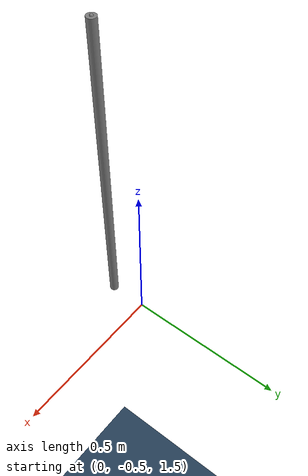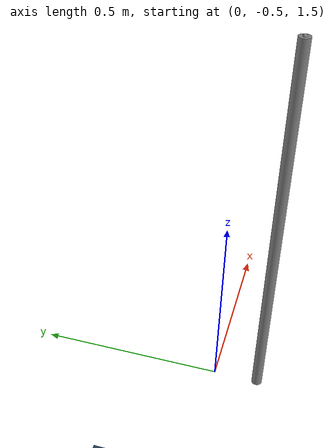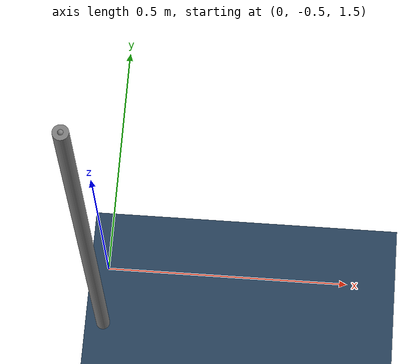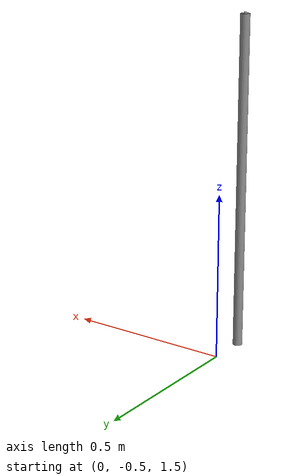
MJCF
<?xml version='1.0' encoding='utf-8'?>
<mujoco model="TT_six_bars">
  <compiler angle="degree" coordinate="local" inertiafromgeom="true" />
  <option timestep="0.0001" integrator="RK4" gravity="0 0 -10">
    <flag contact="enable" energy="enable" />
  </option>
  <default>
    <geom conaffinity="1" condim="1" contype="1" margin="0.001" />
    <site type="sphere" size="0.005" />
    <tendon limited="true" range="0 10" width="0.001" rgba="1 0 0 1" stiffness="250.0" />
    <position ctrllimited="true" ctrlrange="-300 0.00" />
    <joint damping="1.0" armature="1.0" limited="false" />
  </default>
  <visual>
    <headlight diffuse="0.6 0.6 0.6" ambient="0.3 0.3 0.3" specular="0 0 0" />
    <rgba haze="0.15 0.25 0.35 1" />
    <global azimuth="150" elevation="-20" />
  </visual>
  <asset>
    <texture type="skybox" builtin="gradient" rgb1="0.3 0.5 0.7" rgb2="0 0 0" width="512" height="3072" />
    <texture type="2d" name="groundplane" builtin="checker" mark="edge" rgb1="0.2 0.3 0.4" rgb2="0.1 0.2 0.3" markrgb="0.8 0.8 0.8" width="300" height="300" />
    <material name="groundplane" texture="groundplane" texuniform="true" texrepeat="5 5" reflectance="0.2" />
  </asset>
  <worldbody>
    <light cutoff="100" diffuse="1 1 1" dir="-0 0 -1.3" directional="true" exponent="1" pos="0 0 1.3" specular=".1 .1 .1" />
    <geom name="floor" size="0 0 .125" type="plane" material="groundplane" conaffinity="15" condim="3" />
    <body name="rod0_6" pos="0.0 -0.3090169943749474 1.0" />
    <body name="rod0_6" pos="0.0 -0.3090169943749474 1.0">
      <joint type="free" name="joint0_6" />
      <geom name="geom0_6" type="cylinder" fromto="0.0 -0.3090169943749474 0.5 0.0 -0.3090169943749474 1.5" density="1000" size="0.014" />
      <site name="s0" pos="0.0 -0.3090169943749474 0.5" />
      <site name="s6" pos="0.0 -0.3090169943749474 1.5" />
    </body>
  </worldbody>
  <tendon>
    <spatial name="td0_2">
      <site site="s0" />
      <site site="s2" />
    </spatial>
    <spatial name="td0_4">
      <site site="s0" />
      <site site="s4" />
    </spatial>
    <spatial name="td0_5">
      <site site="s0" />
      <site site="s5" />
    </spatial>
    <spatial name="td0_8">
      <site site="s0" />
      <site site="s8" />
    </spatial>
    <spatial name="td1_2">
      <site site="s1" />
      <site site="s2" />
    </spatial>
    <spatial name="td1_8">
      <site site="s1" />
      <site site="s8" />
    </spatial>
    <spatial name="td1_10">
      <site site="s1" />
      <site site="s10" />
    </spatial>
    <spatial name="td1_11">
      <site site="s1" />
      <site site="s11" />
    </spatial>
    <spatial name="td2_4">
      <site site="s2" />
      <site site="s4" />
    </spatial>
    <spatial name="td2_10">
      <site site="s2" />
      <site site="s10" />
    </spatial>
    <spatial name="td3_4">
      <site site="s3" />
      <site site="s4" />
    </spatial>
    <spatial name="td3_6">
      <site site="s3" />
      <site site="s6" />
    </spatial>
    <spatial name="td3_7">
      <site site="s3" />
      <site site="s7" />
    </spatial>
    <spatial name="td3_10">
      <site site="s3" />
      <site site="s10" />
    </spatial>
    <spatial name="td4_6">
      <site site="s4" />
      <site site="s6" />
    </spatial>
    <spatial name="td5_6">
      <site site="s5" />
      <site site="s6" />
    </spatial>
    <spatial name="td5_8">
      <site site="s5" />
      <site site="s8" />
    </spatial>
    <spatial name="td5_9">
      <site site="s5" />
      <site site="s9" />
    </spatial>
    <spatial name="td6_9">
      <site site="s6" />
      <site site="s9" />
    </spatial>
    <spatial name="td7_9">
      <site site="s7" />
      <site site="s9" />
    </spatial>
    <spatial name="td7_10">
      <site site="s7" />
      <site site="s10" />
    </spatial>
    <spatial name="td7_11">
      <site site="s7" />
      <site site="s11" />
    </spatial>
    <spatial name="td8_11">
      <site site="s8" />
      <site site="s11" />
    </spatial>
    <spatial name="td9_11">
      <site site="s9" />
      <site site="s11" />
    </spatial>
  </tendon>
</mujoco>
